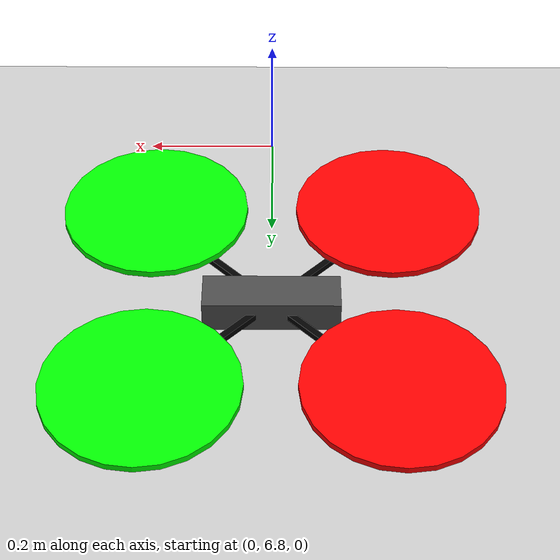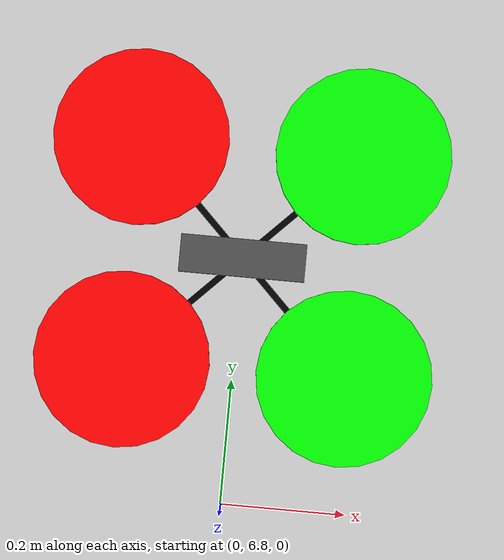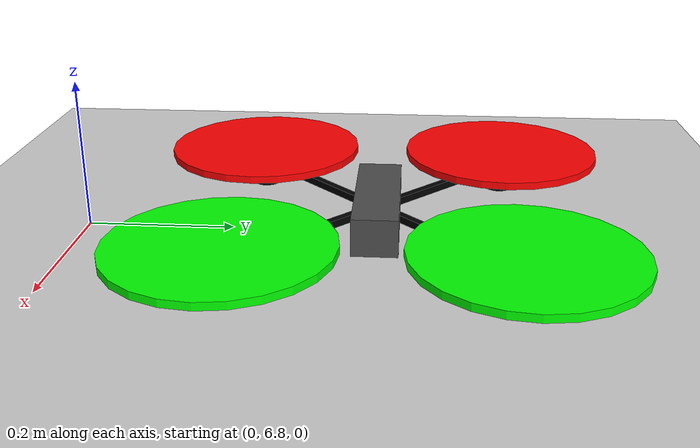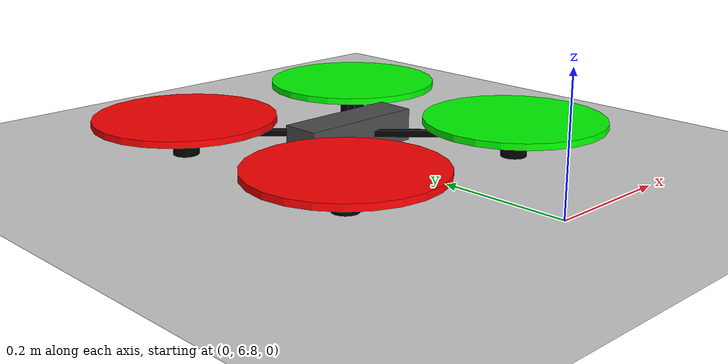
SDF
<sdf version="1.5">
 <world name="default">
  <scene><ambient>0.5 0.5 0.5 1</ambient><shadows>1</shadows><background>0.7 0.7 0.7 1</background></scene>
  <light name="sun" type="directional">
   <pose>0 0 10 0 -0 0</pose>
   <diffuse>0.8 0.8 0.8 1</diffuse>
   <specular>0.2 0.2 0.2 1</specular>
   <attenuation>
    <range>1000</range>
    <constant>0.9</constant>
    <linear>0.01</linear>
    <quadratic>0.001</quadratic>
   </attenuation>
   <direction>-0.5 0.1 -0.9</direction>
  </light>
  <model name="ground_plane">
   <static>1</static>
   <link name="link">
    <collision name="collision">
     <geometry><plane><normal>0 0 1</normal><size>100 100</size></plane></geometry>
     <surface><friction><ode><mu>100</mu><mu2>50</mu2></ode></friction></surface>
    </collision>
    <visual name="visual">
     <cast_shadows>0</cast_shadows>
     <geometry><plane><normal>0 0 1</normal><size>100 100</size></plane></geometry>
     <material>
      <script><uri>file://media/materials/scripts/gazebo.material</uri><name>Gazebo/Grey</name></script>
     </material>
    </visual>
   </link>
  </model>
  <model name="abejorro">
   <static>0</static>
   <link name="dronelink">
    <visual name="fuselaje">
     <geometry><box><size>0.2 0.06 0.05</size></box></geometry>
     <material><ambient>0.3 0.3 0.3 1</ambient><diffuse>0.3 0.3 0.3 1</diffuse></material>
    </visual>
    <collision name="fuselaje">
     <geometry><box><size>0.2 0.06 0.05</size></box></geometry>
     <surface><friction><ode><mu>0.1</mu><mu2>0.2</mu2><slip1>1</slip1><slip2>1</slip2></ode></friction></surface>
    </collision>
    <visual name="brazo_NE">
     <pose>0.0884 -0.0884 0 0 0 -0.7854</pose>
     <geometry><box><size>0.25 0.01 0.01</size></box></geometry>
     <material><ambient>0 0 0 1</ambient><diffuse>0 0 0 1</diffuse></material>
    </visual>
    <collision name="brazo_NE">
     <pose>0.0884 -0.0884 0 0 0 -0.7854</pose>
     <geometry><box><size>0.25 0.01 0.01</size></box></geometry>
     <surface><friction><ode><mu>0.1</mu><mu2>0.2</mu2><slip1>1</slip1><slip2>1</slip2></ode></friction></surface>
    </collision>
    <visual name="motor_NE">
     <pose>0.1768 -0.1768 -0.01 0 -0 0</pose>
     <geometry><cylinder><radius>0.02</radius><length>0.05</length></cylinder></geometry>
     <material><ambient>0 0 0 1</ambient><diffuse>0 0 0 1</diffuse></material>
    </visual>
    <collision name="motor_NE">
     <pose>0.1768 -0.1768 -0.01 0 -0 0</pose>
     <geometry><cylinder><radius>0.02</radius><length>0.05</length></cylinder></geometry>
     <surface><friction><ode><mu>0.1</mu><mu2>0.2</mu2><slip1>1</slip1><slip2>1</slip2></ode></friction></surface>
    </collision>
    <visual name="rotor_NE">
     <pose>0.1768 -0.1768 0.02 0 -0 0</pose>
     <geometry><cylinder><radius>0.14</radius><length>0.01</length></cylinder></geometry>
     <material><ambient>0 1 0 1</ambient><diffuse>0 1 0 1</diffuse></material>
    </visual>
    <collision name="rotor_NE">
     <pose>0.1768 -0.1768 0.02 0 -0 0</pose>
     <geometry><cylinder><radius>0.14</radius><length>0.01</length></cylinder></geometry>
     <surface><friction><ode><mu>0.1</mu><mu2>0.2</mu2><slip1>1</slip1><slip2>1</slip2></ode></friction></surface>
    </collision>
    <visual name="brazo_NW">
     <pose>0.0884 0.0884 0 0 -0 0.7854</pose>
     <geometry><box><size>0.25 0.01 0.01</size></box></geometry>
     <material><ambient>0 0 0 1</ambient><diffuse>0 0 0 1</diffuse></material>
    </visual>
    <collision name="brazo_NW">
     <pose>0.0884 0.0884 0 0 -0 0.7854</pose>
     <geometry><box><size>0.25 0.01 0.01</size></box></geometry>
     <surface><friction><ode><mu>0.1</mu><mu2>0.2</mu2><slip1>1</slip1><slip2>1</slip2></ode></friction></surface>
    </collision>
    <visual name="motor_NW">
     <pose>0.1768 0.1768 -0.01 0 -0 0</pose>
     <geometry><cylinder><radius>0.02</radius><length>0.05</length></cylinder></geometry>
     <material><ambient>0 0 0 1</ambient><diffuse>0 0 0 1</diffuse></material>
    </visual>
    <collision name="motor_NW">
     <pose>0.1768 0.1768 -0.01 0 -0 0</pose>
     <geometry><cylinder><radius>0.02</radius><length>0.05</length></cylinder></geometry>
     <surface><friction><ode><mu>0.1</mu><mu2>0.2</mu2><slip1>1</slip1><slip2>1</slip2></ode></friction></surface>
    </collision>
    <visual name="rotor_NW">
     <pose>0.1768 0.1768 0.02 0 -0 0</pose>
     <geometry><cylinder><radius>0.14</radius><length>0.01</length></cylinder></geometry>
     <material><ambient>0 1 0 1</ambient><diffuse>0 1 0 1</diffuse></material>
    </visual>
    <collision name="rotor_NW">
     <pose>0.1768 0.1768 0.02 0 -0 0</pose>
     <geometry><cylinder><radius>0.14</radius><length>0.01</length></cylinder></geometry>
     <surface><friction><ode><mu>0.1</mu><mu2>0.2</mu2><slip1>1</slip1><slip2>1</slip2></ode></friction></surface>
    </collision>
    <visual name="brazo_SE">
     <pose>-0.0884 -0.0884 0 0 -0 0.7854</pose>
     <geometry><box><size>0.25 0.01 0.01</size></box></geometry>
     <material><ambient>0 0 0 1</ambient><diffuse>0 0 0 1</diffuse></material>
    </visual>
    <collision name="brazo_SE">
     <pose>-0.0884 -0.0884 0 0 -0 0.7854</pose>
     <geometry><box><size>0.25 0.01 0.01</size></box></geometry>
     <surface><friction><ode><mu>0.1</mu><mu2>0.2</mu2><slip1>1</slip1><slip2>1</slip2></ode></friction></surface>
    </collision>
    <visual name="motor_SE">
     <pose>-0.1768 -0.1768 -0.01 0 -0 0</pose>
     <geometry><cylinder><radius>0.02</radius><length>0.05</length></cylinder></geometry>
     <material><ambient>0 0 0 1</ambient><diffuse>0 0 0 1</diffuse></material>
    </visual>
    <collision name="motor_SE">
     <pose>-0.1768 -0.1768 -0.01 0 -0 0</pose>
     <geometry><cylinder><radius>0.02</radius><length>0.05</length></cylinder></geometry>
     <surface><friction><ode><mu>0.1</mu><mu2>0.2</mu2><slip1>1</slip1><slip2>1</slip2></ode></friction></surface>
    </collision>
    <visual name="rotor_SE">
     <pose>-0.1768 -0.1768 0.02 0 -0 0</pose>
     <geometry><cylinder><radius>0.14</radius><length>0.01</length></cylinder></geometry>
     <material><ambient>1 0 0 1</ambient><diffuse>1 0 0 1</diffuse></material>
    </visual>
    <collision name="rotor_SE">
     <pose>-0.1768 -0.1768 0.02 0 -0 0</pose>
     <geometry><cylinder><radius>0.14</radius><length>0.01</length></cylinder></geometry>
     <surface><friction><ode><mu>0.1</mu><mu2>0.2</mu2><slip1>1</slip1><slip2>1</slip2></ode></friction></surface>
    </collision>
    <visual name="brazo_SW">
     <pose>-0.0884 0.0884 0 0 0 -0.7854</pose>
     <geometry><box><size>0.25 0.01 0.01</size></box></geometry>
     <material><ambient>0 0 0 1</ambient><diffuse>0 0 0 1</diffuse></material>
    </visual>
    <collision name="brazo_SW">
     <pose>-0.0884 0.0884 0 0 0 -0.7854</pose>
     <geometry><box><size>0.25 0.01 0.01</size></box></geometry>
     <surface><friction><ode><mu>0.1</mu><mu2>0.2</mu2><slip1>1</slip1><slip2>1</slip2></ode></friction></surface>
    </collision>
    <visual name="motor_SW">
     <pose>-0.1768 0.1768 -0.01 0 -0 0</pose>
     <geometry><cylinder><radius>0.02</radius><length>0.05</length></cylinder></geometry>
     <material><ambient>0 0 0 1</ambient><diffuse>0 0 0 1</diffuse></material>
    </visual>
    <collision name="motor_SW">
     <pose>-0.1768 0.1768 -0.01 0 -0 0</pose>
     <geometry><cylinder><radius>0.02</radius><length>0.05</length></cylinder></geometry>
     <surface><friction><ode><mu>0.1</mu><mu2>0.2</mu2><slip1>1</slip1><slip2>1</slip2></ode></friction></surface>
    </collision>
    <visual name="rotor_SW">
     <pose>-0.1768 0.1768 0.02 0 -0 0</pose>
     <geometry><cylinder><radius>0.14</radius><length>0.01</length></cylinder></geometry>
     <material><ambient>1 0 0 1</ambient><diffuse>1 0 0 1</diffuse></material>
    </visual>
    <collision name="rotor_SW">
     <pose>-0.1768 0.1768 0.02 0 -0 0</pose>
     <geometry><cylinder><radius>0.14</radius><length>0.01</length></cylinder></geometry>
     <surface><friction><ode><mu>0.1</mu><mu2>0.2</mu2><slip1>1</slip1><slip2>1</slip2></ode></friction></surface>
    </collision>
    <inertial>
     <mass>1.84</mass>
     <inertia>
      <ixx>0.0249167</ixx>
      <ixy>0</ixy>
      <ixz>0</ixz>
      <iyy>0.0249167</iyy>
      <iyz>0</iyz>
      <izz>0.0490667</izz>
     </inertia>
    </inertial>
   </link>
   <pose>-0 7.19646 0.034996 -2.8e-05 0 0</pose>
   <plugin name="model_push" filename="/opt/ros/jade/share/drone_gazebo/plugins/build/libmodel_push.so"/>
  </model>
  <physics name="default_physics" default="0" type="ode">
   <max_step_size>0.001</max_step_size>
   <real_time_factor>1</real_time_factor>
   <real_time_update_rate>1000</real_time_update_rate>
   <gravity>0 0 -9.8</gravity>
   <magnetic_field>6e-06 2.3e-05 -4.2e-05</magnetic_field>
  </physics>
  <spherical_coordinates>
   <surface_model>EARTH_WGS84</surface_model>
   <latitude_deg>0</latitude_deg>
   <longitude_deg>0</longitude_deg>
   <elevation>0</elevation>
   <heading_deg>0</heading_deg>
  </spherical_coordinates>
 </world>
</sdf>
